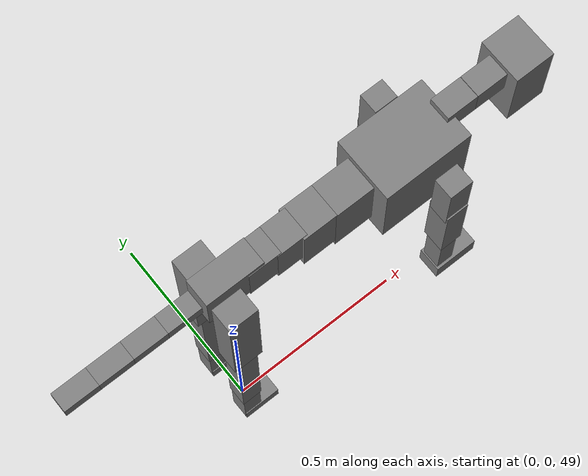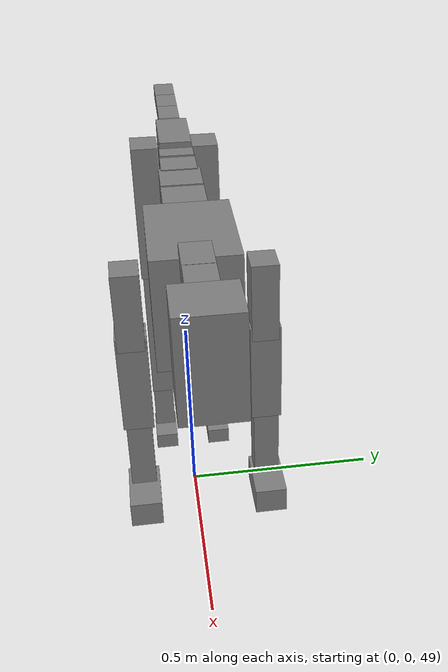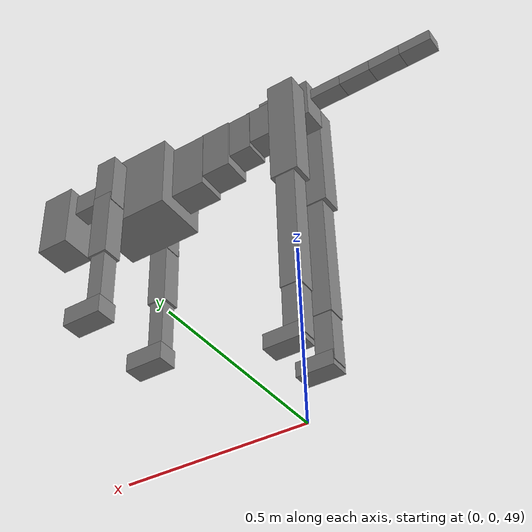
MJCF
<mujoco model="dog">

    <default>
        <joint armature="0.02" stiffness="1" damping="0.2" limited="true"/>
        <geom condim="3" friction="1 0.05 0.05" margin="0.01"/>
        <motor ctrllimited="true" ctrlrange="-1.0 1.0" forcelimited="true" gear="50"/>
    </default>

    <compiler inertiafromgeom="true" angle="radian"/>

    <option timestep="0.016" iterations="50" tolerance="1e-10" solver="Newton" jacobian="dense" cone="pyramidal"/>

    <size nconmax="20000" njmax="60000" nstack="5000000"/>
    <visual>
        <map force="0.1" zfar="30"/>
        <rgba haze="0.15 0.25 0.35 1"/>
        <quality shadowsize="2048"/>
        <global offwidth="800" offheight="800"/>
    </visual>

    <asset>
        <texture type="skybox" builtin="gradient" rgb1="0.3 0.5 0.7" rgb2="0 0 0" width="512" height="512"/>
        <texture name="texplane" type="2d" builtin="checker" rgb1=".2 .3 .4" rgb2=".1 0.15 0.2" width="512" height="512"
                 mark="cross" markrgb=".8 .8 .8"/>
        <texture name="texgeom" type="cube" builtin="flat" mark="cross" width="127" height="1278" rgb1="0.8 0.6 0.4"
                 rgb2="0.8 0.6 0.4" markrgb="1 1 1" random="0.01"/>

        <material name="matplane" reflectance="0.3" texture="texplane" texrepeat="1 1" texuniform="true"/>
        <material name="matgeom" texture="texgeom" texuniform="true" rgba="0.8 0.6 .4 1"/>
    </asset>

    <worldbody>
        <geom name="floor" pos="0 0 0" size="0 0 .25" type="plane" material="matplane" condim="3"/>

        <light directional="false" diffuse=".2 .2 .2" specular="0 0 0" pos="0 0 5" dir="0 0 -1" castshadow="false"/>
        <light mode="targetbodycom" target="torso" directional="false" diffuse=".8 .8 .8" specular="0.3 0.3 0.3"
               pos="0 0 4.0" dir="0 0 -1"/>

        <body name="root" pos="0 0 50">
            <freejoint name="root_1"/>
            <geom type="box" pos="0 0 -0.02" size="0.0774  0.0358  0.063" density="2030"/>

            <body name="spine1" pos="0.054 0 0">
                <joint name="spine1_y" axis="0 1 0" range="0 0.7" limited="true"/>
                <geom type="box" pos="0.02375 0 -0.03" size="0.04375  0.0375  0.05985" density="2030"/>

                <body name="spine2" pos="0.0612 0 0">
                    <joint name="spine2_y" axis="0 1 0" range="-0.15 0.15" limited="true"/>
                    <geom type="box" pos="0.03555  0  -0.04" size="0.04055  0.039  0.06615" density="2030"/>

                    <body name="spine3" pos="0.0730 0 0">
                        <joint name="spine3_y" axis="0 1 0" range="-0.15 0.15" limited="true"/>
                        <geom type="box" pos="0.03555  0  -0.057" size="0.04555  0.0445  0.081" density="2030"/>

                        <body name="spine4" pos="0.0780 0 0">
                            <joint name="spine4_y" axis="0 1 0" range="-0.15 0.15" limited="true"/>
                            <geom type="box" pos="0.05265  0  -0.07" size="0.05265  0.045  0.09135" density="2030"/>

                            <body name="torso" pos="0.1082 0 0">
                                <joint name="torso_y" axis="0 1 0" range="-0.15 0.15" limited="true"/>
                                <geom type="box" pos="0.11925  0  -0.085" size="0.11925  0.085  0.11745"
                                      density="2030"/>

                                <body name="neck1" pos="0.2160  0   0.0180">
                                    <joint name="neck1_y" axis="0 1 0" range="-1.2  -1" limited="true"/>
                                    <geom type="box" pos="0.0423  0  0" size="0.0423  0.03  0.036" density="2325"/>

                                    <body name="neck2" pos="0.0853  0  0">
                                        <joint name="neck2_y" axis="0 1 0" range="0.1  0" limited="true"/>
                                        <geom type="box" pos="0.0423  0  0" size="0.0423  0.03  0.036" density="2325"/>

                                        <body name="head" pos="0.0853  0  0">
                                            <joint name="head_y" axis="0 1 0" range="-0.3  -0.2" limited="true"/>
                                            <geom type="box" pos="0.0531  0  -0.055" size="0.0531  0.06  0.1044"
                                                  density="4030"/>

                                        </body>
                                    </body>
                                </body>

                                <body name="front_shoulder" pos="0.156  0   -0.0480">
                                    <joint name="front_shoulder_y" axis="0 1 0" range="-1 1.5" limited="true"/>
                                    <geom type="box" pos="0 0.13 -0.0557" size="0.0317  0.0271  0.0824" density="1158"/>
                                    <geom type="box" pos="0 -0.13 -0.0557" size="0.0317  0.0271  0.0824"
                                          density="1158"/>

                                    <body name="front_elbow" pos="0  0  -0.1114">
                                        <joint name="front_elbow_y" axis="0 1 0" range="-2 0" limited="true"/>
                                        <geom type="box" pos="0 0.13 -0.1065" size="0.0300  0.0307  0.1065"
                                              density="1081"/>
                                        <geom type="box" pos="0 -0.13 -0.1065" size="0.0300  0.0307  0.1065"
                                              density="1081"/>

                                        <body name="front_wrist" pos="0  0  -0.2131">
                                            <joint name="front_wrist_y" axis="0 1 0" range="-0.2 0" limited="true"/>
                                            <geom type="box" pos="0 0.13 -0.0817" size="0.0232  0.0257  0.0949"
                                                  density="1664"/>
                                            <geom type="box" pos="0 -0.13 -0.0817" size="0.0232  0.0257  0.0949"
                                                  density="1664"/>

                                            <body name="front_finger_end" pos="0  0  -0.1634">
                                                <joint name="front_finger_y" axis="0 1 0" range="-0.4 1"
                                                       limited="true"/>
                                                <geom type="box" pos="0.0325  0.13  -0.0128"
                                                      size="0.0595  0.0325  0.0278" density="1515"/>
                                                <geom type="box" pos="0.0325  -0.13  -0.0128"
                                                      size="0.0595  0.0325  0.0278" density="1515"/>

                                            </body>

                                        </body>
                                    </body>
                                </body>

                            </body>
                        </body>
                    </body>
                </body>
            </body>

            <body name="back_hip" pos="-0.03 0 -0.018">
                <joint name="back_hip_y" axis="0 1 0" range="-1.5 0.3" limited="true"/>
                <geom type="box" pos="0 0.07 -0.1462" size="0.0394  0.0309  0.1690" density="1154"/>
                <geom type="box" pos="0 -0.07 -0.1462" size="0.0394  0.0309  0.1690" density="1154"/>

                <body name="back_knee" pos="0  0  -0.2924">
                    <joint name="back_knee_y" axis="0 1 0" range="0 2.8" limited="true"/>
                    <geom type="box" pos="0 0.07 -0.1803" size="0.0277  0.0273  0.1958" density="1227"/>
                    <geom type="box" pos="0 -0.07 -0.1803" size="0.0277  0.0273  0.1958" density="1227"/>

                    <body name="back_ankle" pos="0  0  -0.3606">
                        <joint name="back_ankle_y" axis="0 1 0" range="-2.2 0" limited="true"/>
                        <geom type="box" pos="0 0.07 -0.0712" size="0.0253  0.0253  0.0824" density="1284"/>
                        <geom type="box" pos="0 -0.07 -0.0712" size="0.0253  0.0253  0.0824" density="1284"/>

                        <body name="back_toe_end" pos="0  0  -0.1424">
                            <joint name="back_toe_y" axis="0 1 0" range="-0.4 1" limited="true"/>
                            <geom type="box" pos="0.0279  0.07  -0.0057" size="0.0512  0.0279  0.0207" density="1515"/>
                            <geom type="box" pos="0.0279  -0.07  -0.0057" size="0.0512  0.0279  0.0207" density="1515"/>

                        </body>
                    </body>
                </body>
            </body>

            <body name="tail1" pos="-0.074 0 -0.006">
                <joint name="tail1_y" axis="0 1 0" range="-0.2 0.2" limited="true"/>
                <geom type="box" pos="-0.0536  0  0" size="0.045  0.025  0.0175" density="1587"/>

                <body name="tail2" pos="-0.09 0 0">
                    <joint name="tail2_y" axis="0 1 0" range="-0.2 0.2" limited="true"/>
                    <geom type="box" pos="-0.0536  0  0" size="0.045  0.025  0.0175" density="1587"/>

                    <body name="tail3" pos="-0.09 0 0">
                        <joint name="tail3_y" axis="0 1 0" range="-0.2 0.2" limited="true"/>
                        <geom type="box" pos="-0.0536  0  0" size="0.045  0.025  0.0175" density="1587"/>

                        <body name="tail4" pos="-0.09 0 0">
                            <joint name="tail4_y" axis="0 1 0" range="-0.2 0.2" limited="true"/>
                            <geom type="box" pos="-0.0536  0  0" size="0.045  0.025  0.0175" density="1587"/>

                        </body>
                    </body>
                </body>
            </body>
        </body>
    </worldbody>

    <actuator>
        <motor joint="spine1_y" forcerange="-150 150     "/>
        <motor joint="spine2_y" forcerange="-150 150     "/>
        <motor joint="spine3_y" forcerange="-150 150     "/>
        <motor joint="spine4_y" forcerange="-150 150     "/>
        <motor joint="torso_y" forcerange="-150 150     "/>
        <motor joint="neck1_y" forcerange="-100 100       "/>
        <motor joint="neck2_y" forcerange="-100 100       "/>
        <motor joint="head_y" forcerange="-150 150       "/>
        <motor joint="front_shoulder_y" forcerange="-147.64 132.85"/>
        <motor joint="front_elbow_y" forcerange="-183.89 139.32"/>
        <motor joint="front_wrist_y" forcerange="-143.10 62.90"/>
        <motor joint="front_finger_y" forcerange="-48.07 85.10"/>
        <motor joint="back_hip_y" forcerange="-224.20 387.47"/>
        <motor joint="back_knee_y" forcerange="-209.12 387.54"/>
        <motor joint="back_angle_y" forcerange="-108.08 196.36"/>
        <motor joint="back_toe_y" forcerange="-40.07 103.39"/>
        <motor joint="tail1_y" forcerange="-50 50     "/>
        <motor joint="tail2_y" forcerange="-50 50     "/>
        <motor joint="tail3_y" forcerange="-50 50     "/>
        <motor joint="tail4_y" forcerange="-50 50     "/>
    </actuator>
</mujoco>
